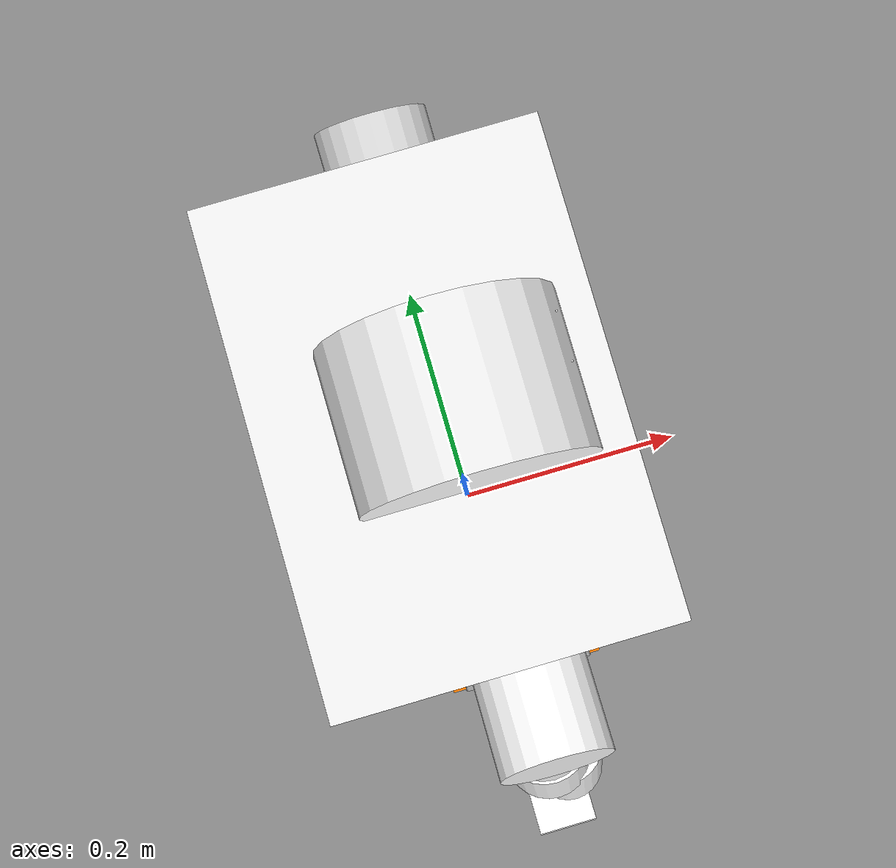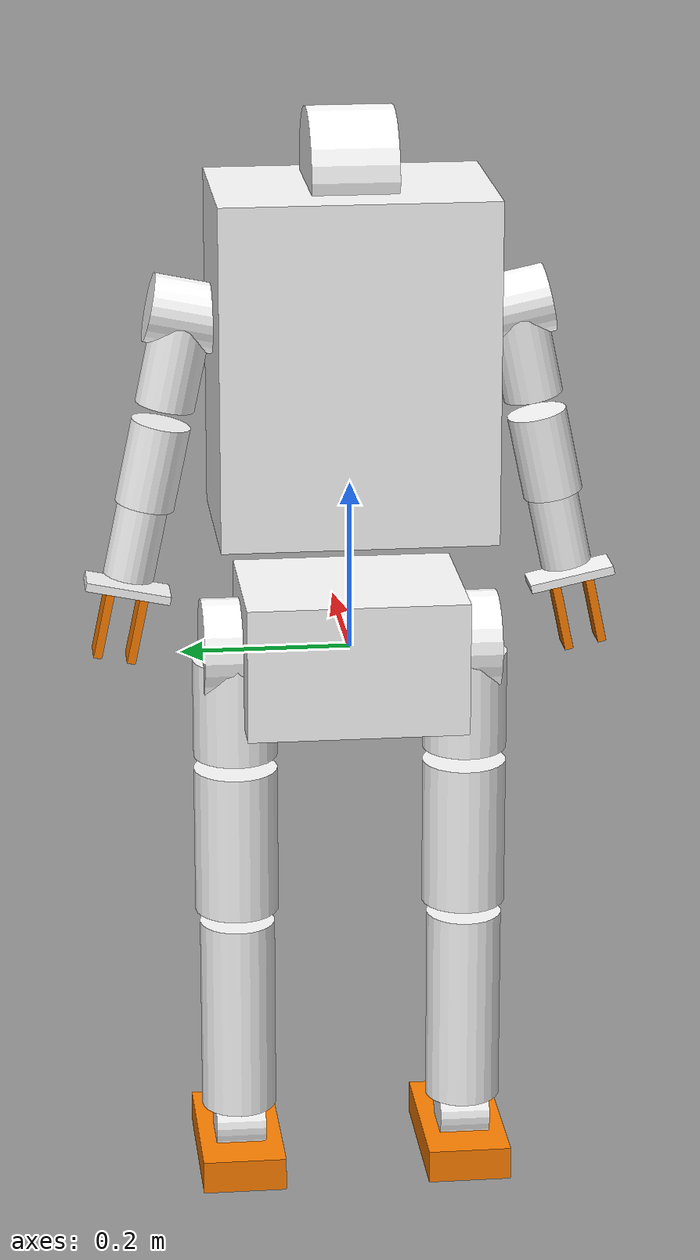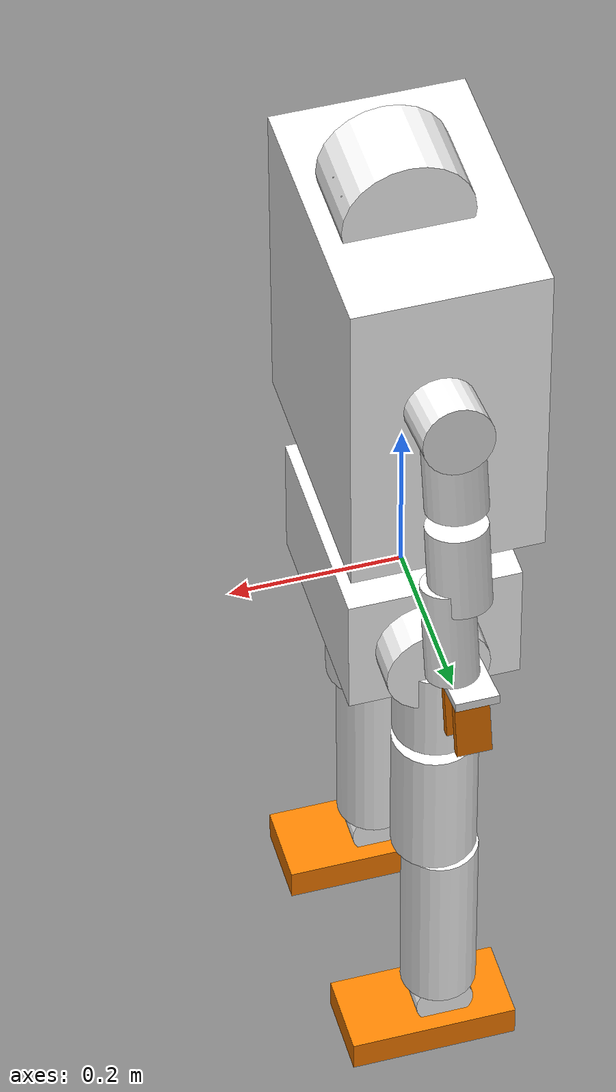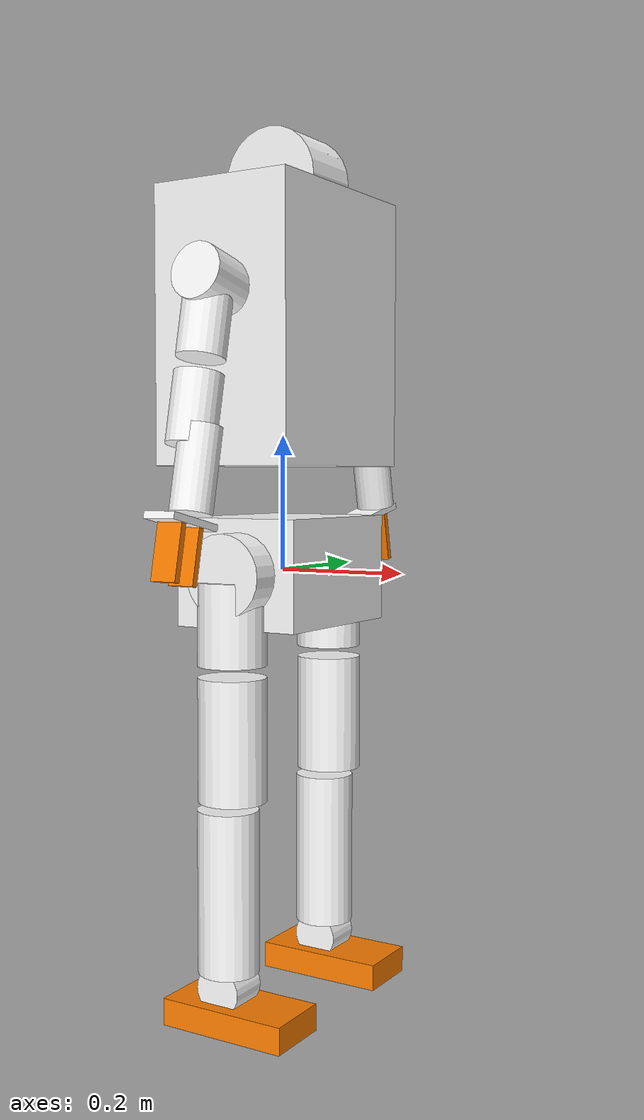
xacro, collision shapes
<?xml version="1.0"?>
<robot xmlns:xacro="http://www.ros.org/wiki/xacro" name="agibot_x2">
    <xacro:arg name="initial_positions_file" default="initial_positions.yaml" />

    <!-- Import agibot_x2 urdf file -->
    <xacro:include filename="$(find agibot_x2_pkg)/urdf/x2_hand_gazebo.urdf" />

    <!-- Import control_xacro -->
    <xacro:include filename="agibot_x2.ros2_control.xacro" />

    <xacro:agibot_x2_ros2_control name="FakeSystem" initial_positions_file="$(arg initial_positions_file)"/>

</robot>

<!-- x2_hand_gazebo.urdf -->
<robot name="agibot_x2" xmlns:xacro="http://www.ros.org/wiki/xacro">
  <xacro:include filename="$(find agibot_x2_pkg)/urdf/control_file.gazebo" />
  <xacro:arg name="finger_mu" default="1.0"/>

  <link name="world"/>

  <joint name="base_x_joint" type="prismatic">
    <parent link="world"/>
    <child link="base_x_link"/>
    <origin xyz="0 0 0" rpy="0 0 0"/>
    <axis xyz="1 0 0"/>
    <limit lower="-1.0" upper="5.0" effort="2000" velocity="2.0"/>
    <dynamics damping="500.0"/>
  </joint>
  <link name="base_x_link">
    <inertial>
      <mass value="0.5"/>
      <inertia ixx="0.001" ixy="0" ixz="0" iyy="0.001" iyz="0" izz="0.001"/>
    </inertial>
  </link>
  <joint name="base_y_joint" type="prismatic">
    <parent link="base_x_link"/>
    <child link="base_y_link"/>
    <origin xyz="0 0 0" rpy="0 0 0"/>
    <axis xyz="0 1 0"/>
    <limit lower="-3.0" upper="3.0" effort="2000" velocity="2.0"/>
    <dynamics damping="500.0"/>
  </joint>
  <link name="base_y_link">
    <inertial>
      <mass value="0.5"/>
      <inertia ixx="0.001" ixy="0" ixz="0" iyy="0.001" iyz="0" izz="0.001"/>
    </inertial>
  </link>
  <joint name="base_z_joint" type="prismatic">
    <parent link="base_y_link"/>
    <child link="base_z_link"/>
    <origin xyz="0 0 0" rpy="0 0 0"/>
    <axis xyz="0 0 1"/>
    <limit lower="-0.10" upper="0.50" effort="2000" velocity="1.0"/>
    <dynamics damping="500.0"/>
  </joint>
  <link name="base_z_link">
    <inertial>
      <mass value="0.5"/>
      <inertia ixx="0.001" ixy="0" ixz="0" iyy="0.001" iyz="0" izz="0.001"/>
    </inertial>
  </link>
  <joint name="base_yaw_joint" type="revolute">
    <parent link="base_z_link"/>
    <child link="pelvis"/>
    <origin xyz="0 0 0" rpy="0 0 0"/>
    <axis xyz="0 0 1"/>
    <limit lower="-3.15" upper="3.15" effort="2000" velocity="2.0"/>
    <dynamics damping="50.0"/>
  </joint>

  <link name="pelvis">
    <inertial>
      <origin xyz="-0.001209 -2.3e-05 -0.002011" rpy="0 0 0" />
      <mass value="3.523487" />
      <inertia ixx="0.0126" ixy="0.0" ixz="0.000163" iyy="0.007924" iyz="-5e-06" izz="0.012417" />
    </inertial>
    <visual>
      <origin xyz="0 0 0" rpy="0 0 0" />
      <geometry>
        <mesh filename="package://agibot_x2_pkg/meshes/pelvis.STL" />
      </geometry>
      <material name="white">
        <color rgba="1 1 1 1" />
      </material>
    </visual>
    <collision>
      <origin xyz="-0.0012 0 0.0" rpy="0 0 0" />
      <geometry>
        <box size="0.20 0.26 0.16" />
      </geometry>
    </collision>
  </link>

  <link name="imu_in_pelvis_link">
    <visual>
      <origin xyz="0 0 0" rpy="0 0 0" />
      <geometry>
        <mesh filename="package://agibot_x2_pkg/meshes/imu_in_pelvis_link.STL" />
      </geometry>
    </visual>
    <collision>
      <geometry>
        <box size="0.001 0.001 0.001"/>
      </geometry>
    </collision>
  </link>
  <joint name="imu_in_pelvis_joint" type="fixed">
    <origin xyz="0.0239464627920677 -0.00022868187247424 0.0417100000000296" rpy="0 0 0" />
    <parent link="pelvis" />
    <child link="imu_in_pelvis_link" />
    <axis xyz="0 0 0" />
  </joint>

  <link name="left_hip_pitch_link">
    <inertial>
      <origin xyz="0.00791 0.064136 0.000116" rpy="0 0 0" />
      <mass value="1.399682" />
      <inertia ixx="0.007995" ixy="0.000739" ixz="0.0" iyy="0.001639" iyz="1e-06" izz="0.007409" />
    </inertial>
    <visual>
      <origin xyz="0 0 0" rpy="0 0 0" />
      <geometry>
        <mesh filename="package://agibot_x2_pkg/meshes/left_hip_pitch_link.STL" />
      </geometry>
      <material name="white">
        <color rgba="1 1 1 1" />
      </material>
    </visual>
    <collision>
      <origin xyz="0.008 0.064 0" rpy="1.5708 0 0" />
      <geometry>
        <cylinder radius="0.06" length="0.08" />
      </geometry>
    </collision>
  </link>
  <joint name="left_hip_pitch_joint" type="revolute">
    <origin xyz="0 0.0713499997541465 0" rpy="0 0 0" />
    <parent link="pelvis" />
    <child link="left_hip_pitch_link" />
    <axis xyz="0 1 0" />
    <limit lower="-2.704" upper="2.556" effort="120" velocity="11.936" />
  </joint>

  <link name="left_hip_roll_link">
    <inertial>
      <origin xyz="4.7e-05 0.000231 -0.093505" rpy="0 0 0" />
      <mass value="1.584804" />
      <inertia ixx="0.017671" ixy="-4e-06" ixz="-6.6e-05" iyy="0.018102" iyz="-2.2e-05" izz="0.002515" />
    </inertial>
    <visual>
      <origin xyz="0 0 0" rpy="0 0 0" />
      <geometry>
        <mesh filename="package://agibot_x2_pkg/meshes/left_hip_roll_link.STL" />
      </geometry>
      <material name="white">
        <color rgba="1 1 1 1" />
      </material>
    </visual>
    <collision>
      <origin xyz="0 0 -0.07" rpy="0 0 0" />
      <geometry>
        <cylinder radius="0.05" length="0.12" />
      </geometry>
    </collision>
  </link>
  <joint name="left_hip_roll_joint" type="revolute">
    <origin xyz="-0.000574999999960968 0.0657000000000312 0" rpy="0 0 0" />
    <parent link="left_hip_pitch_link" />
    <child link="left_hip_roll_link" />
    <axis xyz="1 0 0" />
    <limit lower="-0.235" upper="2.906" effort="120" velocity="11.936" />
  </joint>

  <link name="left_hip_yaw_link">
    <inertial>
      <origin xyz="-0.002375 0.003914 -0.144276" rpy="0 0 0" />
      <mass value="2.010551" />
      <inertia ixx="0.051974" ixy="-7.1e-05" ixz="0.001419" iyy="0.052639" iyz="-0.001453" izz="0.002467" />
    </inertial>
    <visual>
      <origin xyz="0 0 0" rpy="0 0 0" />
      <geometry>
        <mesh filename="package://agibot_x2_pkg/meshes/left_hip_yaw_link.STL" />
      </geometry>
      <material name="white">
        <color rgba="1 1 1 1" />
      </material>
    </visual>
    <collision>
      <origin xyz="0 0 -0.10" rpy="0 0 0" />
      <geometry>
        <cylinder radius="0.05" length="0.18" />
      </geometry>
    </collision>
  </link>
  <joint name="left_hip_yaw_joint" type="revolute">
    <origin xyz="0.000574999999972778 0 -0.136850000000045" rpy="0 0 0" />
    <parent link="left_hip_roll_link" />
    <child link="left_hip_yaw_link" />
    <axis xyz="0 0 1" />
    <limit lower="-1.684" upper="3.43" effort="120" velocity="11.936" />
  </joint>

  <link name="left_knee_link">
    <inertial>
      <origin xyz="-0.002655 0.003681 -0.122697" rpy="0 0 0" />
      <mass value="1.568215" />
      <inertia ixx="0.030979" ixy="-4.5e-05" ixz="0.00017" iyy="0.030995" iyz="-0.000494" izz="0.001942" />
    </inertial>
    <visual>
      <origin xyz="0 0 0" rpy="0 0 0" />
      <geometry>
        <mesh filename="package://agibot_x2_pkg/meshes/left_knee_link.STL" />
      </geometry>
      <material name="white">
        <color rgba="1 1 1 1" />
      </material>
    </visual>
    <collision>
      <origin xyz="0 0 -0.14" rpy="0 0 0" />
      <geometry>
        <cylinder radius="0.045" length="0.24" />
      </geometry>
    </collision>
  </link>
  <joint name="left_knee_joint" type="revolute">
    <origin xyz="-0.00765999999995284 0.000225000000070329 -0.18309999999998" rpy="0 0 0" />
    <parent link="left_hip_yaw_link" />
    <child link="left_knee_link" />
    <axis xyz="0 1 0" />
    <limit lower="0" upper="2.4073" effort="120" velocity="11.936" />
  </joint>

  <link name="left_ankle_pitch_link">
    <inertial>
      <origin xyz="0.011691 -0.000181 0.003548" rpy="0 0 0" />
      <mass value="0.747802" />
      <inertia ixx="0.000985" ixy="8e-06" ixz="-1.1e-05" iyy="0.001162" iyz="-7.3e-05" izz="0.000722" />
    </inertial>
    <visual>
      <origin xyz="0 0 0" rpy="0 0 0" />
      <geometry>
        <mesh filename="package://agibot_x2_pkg/meshes/left_ankle_pitch_link.STL" />
      </geometry>
      <material name="white">
        <color rgba="1 1 1 1" />
      </material>
    </visual>
    <collision>
      <origin xyz="0.01 0 0" rpy="1.5708 0 0" />
      <geometry>
        <cylinder radius="0.035" length="0.06" />
      </geometry>
    </collision>
  </link>
  <joint name="left_ankle_pitch_joint" type="revolute">
    <origin xyz="-0.0100000000000136 -0.000124910735236235 -0.282000000000081" rpy="0 0 0" />
    <parent link="left_knee_link" />
    <child link="left_ankle_pitch_link" />
    <axis xyz="0 1 0" />
    <limit lower="-0.803" upper="0.453" effort="36" velocity="13.087" />
  </joint>

  <link name="left_ankle_roll_link">
    <inertial>
      <origin xyz="0.035428 2.5e-05 -0.049572" rpy="0 0 0" />
      <mass value="1.016166" />
      <inertia ixx="0.0037" ixy="2e-06" ixz="-0.001872" iyy="0.007937" iyz="-1e-06" izz="0.005766" />
    </inertial>
    <visual>
      <origin xyz="0 0 0" rpy="0 0 0" />
      <geometry>
        <mesh filename="package://agibot_x2_pkg/meshes/left_ankle_roll_link.STL" />
      </geometry>
      <material name="yellow">
        <color rgba="1.0 0.5 0.0 1" />
      </material>
    </visual>
    <collision>
      <origin xyz="0.03 0 -0.04" rpy="0 0 0" />
      <geometry>
        <box size="0.20 0.10 0.04" />
      </geometry>
    </collision>
  </link>
  <joint name="left_ankle_roll_joint" type="revolute">
    <origin xyz="-0.00174999998947351 0 0" rpy="0 0 0" />
    <parent link="left_ankle_pitch_link" />
    <child link="left_ankle_roll_link" />
    <axis xyz="1 0 0" />
    <limit lower="-0.262" upper="0.262" effort="24" velocity="15.077" />
  </joint>

  <link name="right_hip_pitch_link">
    <inertial>
      <origin xyz="0.007909 -0.064114 0.000131" rpy="0 0 0" />
      <mass value="1.400227" />
      <inertia ixx="0.007996" ixy="-0.00074" ixz="0.0" iyy="0.00164" iyz="-1e-06" izz="0.007409" />
    </inertial>
    <visual>
      <origin xyz="0 0 0" rpy="0 0 0" />
      <geometry>
        <mesh filename="package://agibot_x2_pkg/meshes/right_hip_pitch_link.STL" />
      </geometry>
      <material name="white">
        <color rgba="1 1 1 1" />
      </material>
    </visual>
    <collision>
      <origin xyz="0.008 -0.064 0" rpy="1.5708 0 0" />
      <geometry>
        <cylinder radius="0.06" length="0.08" />
      </geometry>
    </collision>
  </link>
  <joint name="right_hip_pitch_joint" type="revolute">
    <origin xyz="0 -0.0713499997541464 0" rpy="0 0 0" />
    <parent link="pelvis" />
    <child link="right_hip_pitch_link" />
    <axis xyz="0 1 0" />
    <limit lower="-2.704" upper="2.556" effort="120" velocity="11.936" />
  </joint>

  <link name="right_hip_roll_link">
    <inertial>
      <origin xyz="-0.000586 -0.000228 -0.093568" rpy="0 0 0" />
      <mass value="1.585084" />
      <inertia ixx="0.017694" ixy="4e-06" ixz="2.2e-05" iyy="0.018116" iyz="2.2e-05" izz="0.002516" />
    </inertial>
    <visual>
      <origin xyz="0 0 0" rpy="0 0 0" />
      <geometry>
        <mesh filename="package://agibot_x2_pkg/meshes/right_hip_roll_link.STL" />
      </geometry>
      <material name="white">
        <color rgba="1 1 1 1" />
      </material>
    </visual>
    <collision>
      <origin xyz="0 0 -0.07" rpy="0 0 0" />
      <geometry>
        <cylinder radius="0.05" length="0.12" />
      </geometry>
    </collision>
  </link>
  <joint name="right_hip_roll_joint" type="revolute">
    <origin xyz="0 -0.0657000004916197 0" rpy="0 0 0" />
    <parent link="right_hip_pitch_link" />
    <child link="right_hip_roll_link" />
    <axis xyz="1 0 0" />
    <limit lower="-2.906" upper="0.235" effort="120" velocity="11.936" />
  </joint>

  <link name="right_hip_yaw_link">
    <inertial>
      <origin xyz="-0.002444 -0.003935 -0.144335" rpy="0 0 0" />
      <mass value="2.002622" />
      <inertia ixx="0.051833" ixy="7.1e-05" ixz="0.001432" iyy="0.052497" iyz="0.001457" izz="0.002461" />
    </inertial>
    <visual>
      <origin xyz="0 0 0" rpy="0 0 0" />
      <geometry>
        <mesh filename="package://agibot_x2_pkg/meshes/right_hip_yaw_link.STL" />
      </geometry>
      <material name="white">
        <color rgba="1 1 1 1" />
      </material>
    </visual>
    <collision>
      <origin xyz="0 0 -0.10" rpy="0 0 0" />
      <geometry>
        <cylinder radius="0.05" length="0.18" />
      </geometry>
    </collision>
  </link>
  <joint name="right_hip_yaw_joint" type="revolute">
    <origin xyz="0 0 -0.136850000000023" rpy="0 0 0" />
    <parent link="right_hip_roll_link" />
    <child link="right_hip_yaw_link" />
    <axis xyz="0 0 1" />
    <limit lower="-3.43" upper="1.684" effort="120" velocity="11.936" />
  </joint>

  <link name="right_knee_link">
    <inertial>
      <origin xyz="-0.002699 -0.003794 -0.122288" rpy="0 0 0" />
      <mass value="1.565881" />
      <inertia ixx="0.03081" ixy="4.5e-05" ixz="0.000184" iyy="0.030822" iyz="0.000508" izz="0.001935" />
    </inertial>
    <visual>
      <origin xyz="0 0 0" rpy="0 0 0" />
      <geometry>
        <mesh filename="package://agibot_x2_pkg/meshes/right_knee_link.STL" />
      </geometry>
      <material name="white">
        <color rgba="1 1 1 1" />
      </material>
    </visual>
    <collision>
      <origin xyz="0 0 -0.14" rpy="0 0 0" />
      <geometry>
        <cylinder radius="0.045" length="0.24" />
      </geometry>
    </collision>
  </link>
  <joint name="right_knee_joint" type="revolute">
    <origin xyz="-0.00766000000003646 -0.000225000000000253 -0.183100000000014" rpy="0 0 0" />
    <parent link="right_hip_yaw_link" />
    <child link="right_knee_link" />
    <axis xyz="0 1 0" />
    <limit lower="0" upper="2.4073" effort="120" velocity="11.936" />
  </joint>

  <link name="right_ankle_pitch_link">
    <inertial>
      <origin xyz="0.011665 0.000937 0.00394" rpy="0 0 0" />
      <mass value="0.749566" />
      <inertia ixx="0.001037" ixy="9e-06" ixz="-1.1e-05" iyy="0.001214" iyz="6.9e-05" izz="0.000723" />
    </inertial>
    <visual>
      <origin xyz="0 0 0" rpy="0 0 0" />
      <geometry>
        <mesh filename="package://agibot_x2_pkg/meshes/right_ankle_pitch_link.STL" />
      </geometry>
      <material name="white">
        <color rgba="1 1 1 1" />
      </material>
    </visual>
    <collision>
      <origin xyz="0.01 0 0" rpy="1.5708 0 0" />
      <geometry>
        <cylinder radius="0.035" length="0.06" />
      </geometry>
    </collision>
  </link>
  <joint name="right_ankle_pitch_joint" type="revolute">
    <origin xyz="-0.00999999999984942 0.000124910735223305 -0.282000000000021" rpy="0 0 0" />
    <parent link="right_knee_link" />
    <child link="right_ankle_pitch_link" />
    <axis xyz="0 1 0" />
    <limit lower="-0.803" upper="0.453" effort="36" velocity="13.088" />
  </joint>

  <link name="right_ankle_roll_link">
    <inertial>
      <origin xyz="0.035428 2.5e-05 -0.049572" rpy="0 0 0" />
      <mass value="1.016166" />
      <inertia ixx="0.0037" ixy="2e-06" ixz="-0.001872" iyy="0.007937" iyz="-1e-06" izz="0.005766" />
    </inertial>
    <visual>
      <origin xyz="0 0 0" rpy="0 0 0" />
      <geometry>
        <mesh filename="package://agibot_x2_pkg/meshes/right_ankle_roll_link.STL" />
      </geometry>
      <material name="yellow">
        <color rgba="1.0 0.5 0.0 1" />
      </material>
    </visual>
    <collision>
      <origin xyz="0.03 0 -0.04" rpy="0 0 0" />
      <geometry>
        <box size="0.20 0.10 0.04" />
      </geometry>
    </collision>
  </link>
  <joint name="right_ankle_roll_joint" type="revolute">
    <origin xyz="-0.00174999998537372 0 0" rpy="0 0 0" />
    <parent link="right_ankle_pitch_link" />
    <child link="right_ankle_roll_link" />
    <axis xyz="1 0 0" />
    <limit lower="-0.2625" upper="0.2625" effort="24" velocity="15.077" />
  </joint>

  <link name="waist_yaw_link">
    <inertial>
      <origin xyz="-0.001359 4.7e-05 0.041703" rpy="0 0 0" />
      <mass value="1.668542" />
      <inertia ixx="0.005012" ixy="1e-06" ixz="-0.000209" iyy="0.005" iyz="1e-06" izz="0.002852" />
    </inertial>
    <visual>
      <origin xyz="0 0 0" rpy="0 0 0" />
      <geometry>
        <mesh filename="package://agibot_x2_pkg/meshes/waist_yaw_link.STL" />
      </geometry>
      <material name="white">
        <color rgba="1 1 1 1" />
      </material>
    </visual>
    <collision>
      <geometry>
        <box size="0.001 0.001 0.001"/>
      </geometry>
    </collision>
  </link>
  <joint name="waist_yaw_joint" type="revolute">
    <origin xyz="0 0 0.0670600000000297" rpy="0 0 0" />
    <parent link="pelvis" />
    <child link="waist_yaw_link" />
    <axis xyz="0 0 1" />
    <limit lower="-3.43" upper="2.382" effort="120" velocity="11.936" />
  </joint>

  <link name="waist_pitch_link">
    <inertial>
      <origin xyz="0.008967 -1e-06 0.0" rpy="0 0 0" />
      <mass value="0.392413" />
      <inertia ixx="0.000133" ixy="0.0" ixz="0.0" iyy="0.000133" iyz="0.0" izz="0.00023" />
    </inertial>
    <visual>
      <origin xyz="0 0 0" rpy="0 0 0" />
      <geometry>
        <mesh filename="package://agibot_x2_pkg/meshes/waist_pitch_link.STL" />
      </geometry>
      <material name="white">
        <color rgba="1 1 1 1" />
      </material>
    </visual>
    <collision>
      <geometry>
        <box size="0.001 0.001 0.001"/>
      </geometry>
    </collision>
  </link>
  <joint name="waist_pitch_joint" type="revolute">
    <origin xyz="0 0 0.0880106468356499" rpy="0 0 0" />
    <parent link="waist_yaw_link" />
    <child link="waist_pitch_link" />
    <axis xyz="0 1 0" />
    <limit lower="-0.314" upper="0.314" effort="48" velocity="13.088" />
  </joint>

  <link name="torso_link">
    <inertial>
      <origin xyz="-0.00574 0.000528 0.196696" rpy="0 0 0" />
      <mass value="9.464653" />
      <inertia ixx="0.472108" ixy="0.00022" ixz="-0.01945" iyy="0.45047" iyz="0.000757" izz="0.066357" />
    </inertial>
    <visual>
      <origin xyz="0 0 0" rpy="0 0 0" />
      <geometry>
        <mesh filename="package://agibot_x2_pkg/meshes/torso_plus_link.STL" />
      </geometry>
      <material name="white">
        <color rgba="1 1 1 1" />
      </material>
    </visual>
    <collision>
      <origin xyz="-0.0057 0.0 0.20" rpy="0 0 0" />
      <geometry>
        <box size="0.22 0.32 0.40" />
      </geometry>
    </collision>
  </link>
  <joint name="waist_roll_joint" type="revolute">
    <origin xyz="0 0 0" rpy="0 0 0" />
    <parent link="waist_pitch_link" />
    <child link="torso_link" />
    <axis xyz="1 0 0" />
    <limit lower="-0.488" upper="0.488" effort="48" velocity="13.088" />
  </joint>

  <link name="imu_in_torso_link">
    <visual>
      <origin xyz="0 0 0" rpy="0 0 0" />
      <geometry>
        <mesh filename="package://agibot_x2_pkg/meshes/imu_in_torso_link.STL" />
      </geometry>
      <material name="white">
        <color rgba="1 1 1 1" />
      </material>
    </visual>
    <collision>
      <geometry>
        <box size="0.001 0.001 0.001"/>
      </geometry>
    </collision>
  </link>
  <joint name="imu_in_torso_joint" type="fixed">
    <origin xyz="-0.0248787003951661 0.0019852778697029 0.105938055641669" rpy="0 0 0" />
    <parent link="torso_link" />
    <child link="imu_in_torso_link" />
    <axis xyz="0 0 0" />
  </joint>

  <link name="left_shoulder_pitch_link">
    <inertial>
      <origin xyz="0.003007 0.050014 6.2e-05" rpy="0 0 0" />
      <mass value="0.885896" />
      <inertia ixx="0.003023" ixy="0.000137" ixz="-2e-06" iyy="0.000685" iyz="1e-06" izz="0.002929" />
    </inertial>
    <visual>
      <origin xyz="0 0 0" rpy="0 0 0" />
      <geometry>
        <mesh filename="package://agibot_x2_pkg/meshes/left_shoulder_pitch_link.STL" />
      </geometry>
      <material name="white">
        <color rgba="1 1 1 1" />
      </material>
    </visual>
    <collision>
      <origin xyz="0.003 0.05 0" rpy="1.5708 0 0" />
      <geometry>
        <cylinder radius="0.04" length="0.08" />
      </geometry>
    </collision>
  </link>
  <joint name="left_shoulder_pitch_joint" type="revolute">
    <origin xyz="0.00329906676354264 0.143031506663431 0.241647721005027" rpy="0.209439453777995 0 0" />
    <parent link="torso_link" />
    <child link="left_shoulder_pitch_link" />
    <axis xyz="0 1 0" />
    <limit lower="-3.08" upper="2.04" effort="36" velocity="13.088" />
  </joint>

  <link name="left_shoulder_roll_link">
    <inertial>
      <origin xyz="0.000621 -0.000183 -0.078842" rpy="0 0 0" />
      <mass value="0.706556" />
      <inertia ixx="0.0054" ixy="0.0" ixz="-6.7e-05" iyy="0.005499" iyz="1.4e-05" izz="0.00054" />
    </inertial>
    <visual>
      <origin xyz="0 0 0" rpy="0 0 0" />
      <geometry>
        <mesh filename="package://agibot_x2_pkg/meshes/left_shoulder_roll_link.STL" />
      </geometry>
      <material name="white">
        <color rgba="1 1 1 1" />
      </material>
    </visual>
    <collision>
      <origin xyz="0 0 -0.06" rpy="0 0 0" />
      <geometry>
        <cylinder radius="0.035" length="0.10" />
      </geometry>
    </collision>
  </link>
  <joint name="left_shoulder_roll_joint" type="revolute">
    <origin xyz="-0.00049991072907324 0.0495 0" rpy="0 0 0" />
    <parent link="left_shoulder_pitch_link" />
    <child link="left_shoulder_roll_link" />
    <axis xyz="1 0 0" />
    <limit lower="-0.061" upper="2.993" effort="36" velocity="13.088" />
  </joint>

  <link name="left_shoulder_yaw_link">
    <inertial>
      <origin xyz="0.010005 0.000179 -0.069477" rpy="0 0 0" />
      <mass value="0.704662" />
      <inertia ixx="0.004291" ixy="0.0" ixz="-0.000607" iyy="0.004367" iyz="-8e-06" izz="0.000543" />
    </inertial>
    <visual>
      <origin xyz="0 0 0" rpy="0 0 0" />
      <geometry>
        <mesh filename="package://agibot_x2_pkg/meshes/left_shoulder_yaw_link.STL" />
      </geometry>
      <material name="white">
        <color rgba="1 1 1 1" />
      </material>
    </visual>
    <collision>
      <origin xyz="0 0 -0.06" rpy="0 0 0" />
      <geometry>
        <cylinder radius="0.035" length="0.10" />
      </geometry>
    </collision>
  </link>
  <joint name="left_shoulder_yaw_joint" type="revolute">
    <origin xyz="0.00122423638490546 0 -0.121194848262102" rpy="0 -0.00597565694965793 0" />
    <parent link="left_shoulder_roll_link" />
    <child link="left_shoulder_yaw_link" />
    <axis xyz="0 0 1" />
    <limit lower="-2.556" upper="2.556" effort="24" velocity="15.077" />
  </joint>

  <link name="left_elbow_link">
    <inertial>
      <origin xyz="-0.013174 0.003788 -0.080203" rpy="0 0 0" />
      <mass value="0.688008" />
      <inertia ixx="0.00527" ixy="-1.9e-05" ixz="0.000743" iyy="0.005332" iyz="-9.4e-05" izz="0.000563" />
    </inertial>
    <visual>
      <origin xyz="0 0 0" rpy="0 0 0" />
      <geometry>
        <mesh filename="package://agibot_x2_pkg/meshes/left_elbow_link.STL" />
      </geometry>
      <material name="white">
        <color rgba="1 1 1 1" />
      </material>
    </visual>
    <collision>
      <origin xyz="0 0 -0.06" rpy="0 0 0" />
      <geometry>
        <cylinder radius="0.03" length="0.12" />
      </geometry>
    </collision>
  </link>
  <joint name="left_elbow_joint" type="revolute">
    <origin xyz="0.0140000000488655 0.000199986464082369 -0.0829500000002385" rpy="0 0.00597565694965793 0" />
    <parent link="left_shoulder_yaw_link" />
    <child link="left_elbow_link" />
    <axis xyz="0 1 0" />
    <limit lower="-2.3556" upper="0" effort="24" velocity="15.077" />
  </joint>

  <link name="left_wrist_yaw_link">
    <inertial>
      <origin xyz="0.003072 -0.000934 -0.117784" rpy="0 0 0" />
      <mass value="0.525614" />
      <inertia ixx="0.009959" ixy="-3e-05" ixz="-0.000278" iyy="0.010026" iyz="8.7e-05" izz="0.0004" />
    </inertial>
  </link>
  <joint name="left_wrist_yaw_joint" type="revolute">
    <origin xyz="-0.01328 -9.7549E-05 -0.12058" rpy="0 0 0" />
    <parent link="left_elbow_link" />
    <child link="left_wrist_yaw_link" />
    <axis xyz="0 0 -1" />
    <limit lower="-2.556" upper="2.556" effort="24" velocity="15.077" />
  </joint>

  <!-- NUOVO GRIPPER SINISTRO -->
  <joint name="left_gripper_mount_joint" type="fixed">
    <parent link="left_wrist_yaw_link"/>
    <child link="left_gripper_base_link"/>
    <origin xyz="0.0 0 -0.01" rpy="0.0 0 0"/>
  </joint>

  <link name="left_gripper_base_link">
    <inertial>
      <mass value="0.1"/>
      <origin xyz="0.0 0.0 0.0" rpy="0.0 0.0 0.0"/>
      <inertia ixx="0.00009" ixy="0.0" ixz="0.0" iyy="0.00009" iyz="0.0" izz="0.00002"/>
    </inertial>
    <collision>
      <geometry>
        <box size=".05 .1 .01"/>
      </geometry>
      <origin xyz="0.0 0.0 0.0" rpy="0.0 0.0 0.0"/>
    </collision>
    <visual>
      <geometry>
        <box size=".05 .1 .01"/>
      </geometry>
      <material name="white">
        <color rgba="1 1 1 1"/>
      </material>
      <origin xyz="0.0 0.0 0.0" rpy="0.0 0.0 0.0"/>
    </visual>
  </link>

  <joint name="left_gripper_left_finger_joint" type="prismatic">
    <limit lower="0" upper="0.04" effort="100.0" velocity="4.0"/>
    <parent link="left_gripper_base_link"/>
    <child link="left_gripper_left_finger_link"/>
    <axis xyz="0 1 0"/>
    <origin xyz="0.0 0.02 -0.045" />
  </joint>

  <link name="left_gripper_left_finger_link">
    <inertial>
      <mass value="0.1"/>
      <origin xyz="0.0 0.0 0.0" rpy="0.0 0.0 0.0"/>
      <inertia ixx="0.00009" ixy="0.0" ixz="0.0" iyy="0.00009" iyz="0.0" izz="0.00002"/>
    </inertial>
    <collision>
      <geometry>
        <box size=".04 .01 .08"/>
      </geometry>
      <origin xyz="0.0 0.0 0.0" rpy="0.0 0.0 0.0"/>
    </collision>
    <visual>
      <geometry>
        <box size=".04 .01 .08"/>
      </geometry>
      <material name="yellow">
        <color rgba="1.0 0.5 0.0 1"/>
      </material>
      <origin xyz="0.0 0.0 0.0" rpy="0.0 0.0 0.0"/>
    </visual>
  </link>

  <gazebo reference="left_gripper_left_finger_link">
    <kp>1000000.0</kp>
    <kd>100.0</kd>
    <mu1>$(arg finger_mu)</mu1>
    <mu2>$(arg finger_mu)</mu2>
    <fdir1>1 0 0</fdir1>
    <maxVel>1.0</maxVel>
    <minDepth>0.002</minDepth>
  </gazebo>

  <joint name="left_gripper_right_finger_joint" type="prismatic">
    <limit lower="0" upper="0.04" effort="100.0" velocity="4.0"/>
    <parent link="left_gripper_base_link"/>
    <child link="left_gripper_right_finger_link"/>
    <axis xyz="0 -1 0"/>
    <origin xyz="0.0 -0.02 -0.045" />
  </joint>

  <link name="left_gripper_right_finger_link">
    <inertial>
      <mass value="0.1"/>
      <origin xyz="0.0 0.0 0.0" rpy="0.0 0.0 0.0"/>
      <inertia ixx="0.00009" ixy="0.0" ixz="0.0" iyy="0.00009" iyz="0.0" izz="0.00002"/>
    </inertial>
    <collision>
      <geometry>
        <box size=".04 .01 .08"/>
      </geometry>
      <origin xyz="0.0 0.0 0.0" rpy="0.0 0.0 0.0"/>
    </collision>
    <visual>
      <geometry>
        <box size=".04 .01 .08"/>
      </geometry>
      <material name="yellow">
        <color rgba="1.0 0.5 0.0 1"/>
      </material>
      <origin xyz="0.0 0.0 0.0" rpy="0.0 0.0 0.0"/>
    </visual>
  </link>

  <gazebo reference="left_gripper_right_finger_link">
    <kp>1000000.0</kp>
    <kd>100.0</kd>
    <mu1>$(arg finger_mu)</mu1>
    <mu2>$(arg finger_mu)</mu2>
    <fdir1>1 0 0</fdir1>
    <maxVel>1.0</maxVel>
    <minDepth>0.002</minDepth>
  </gazebo>

  <link name="left_gripper_camera_link">
    <inertial>
      <origin xyz="0 0 0" rpy="0 0 0"/>
      <mass value="0.001"/>
      <inertia ixx="1e-6" ixy="0" ixz="0" iyy="1e-6" iyz="0" izz="1e-6"/>
    </inertial>
    <visual>
      <origin xyz="0 0 0" rpy="0 0 0"/>
      <geometry>
        <box size="0.008 0.008 0.008"/>
      </geometry>
      <material name="red">
        <color rgba="1 0 0 1"/>
      </material>
    </visual>
  </link>
  <joint name="left_gripper_camera_joint" type="fixed">
    <origin xyz="0 0 -0.005" rpy="0 1.5707963 0"/>
    <parent link="left_gripper_base_link"/>
    <child link="left_gripper_camera_link"/>
  </joint>

  <link name="right_shoulder_pitch_link">
    <inertial>
      <origin xyz="0.002721 -0.050304 3.4e-05" rpy="0 0 0" />
      <mass value="0.885544" />
      <inertia ixx="0.003031" ixy="-0.000123" ixz="-1e-06" iyy="0.000681" iyz="0.0" izz="0.002949" />
    </inertial>
    <visual>
      <origin xyz="0 0 0" rpy="0 0 0" />
      <geometry>
        <mesh filename="package://agibot_x2_pkg/meshes/right_shoulder_pitch_link.STL" />
      </geometry>
      <material name="white">
        <color rgba="1 1 1 1" />
      </material>
    </visual>
    <collision>
      <origin xyz="0.003 -0.05 0" rpy="1.5708 0 0" />
      <geometry>
        <cylinder radius="0.04" length="0.08" />
      </geometry>
    </collision>
  </link>
  <joint name="right_shoulder_pitch_joint" type="revolute">
    <origin xyz="0.00330093831251838 -0.143030971450747 0.241648201390685" rpy="-0.209442812383636 0 0" />
    <parent link="torso_link" />
    <child link="right_shoulder_pitch_link" />
    <axis xyz="0 1 0" />
    <limit lower="-3.08" upper="2.04" effort="36" velocity="13.088" />
  </joint>

  <link name="right_shoulder_roll_link">
    <inertial>
      <origin xyz="0.000598 0.000185 -0.079928" rpy="0 0 0" />
      <mass value="0.696963" />
      <inertia ixx="0.0054" ixy="0.0" ixz="-3.8e-05" iyy="0.005489" iyz="-1.4e-05" izz="0.00053" />
    </inertial>
    <visual>
      <origin xyz="0 0 0" rpy="0 0 0" />
      <geometry>
        <mesh filename="package://agibot_x2_pkg/meshes/right_shoulder_roll_link.STL" />
      </geometry>
      <material name="white">
        <color rgba="1 1 1 1" />
      </material>
    </visual>
    <collision>
      <origin xyz="0 0 -0.06" rpy="0 0 0" />
      <geometry>
        <cylinder radius="0.035" length="0.10" />
      </geometry>
    </collision>
  </link>
  <joint name="right_shoulder_roll_joint" type="revolute">
    <origin xyz="-0.000499999994070091 -0.0495000000000002 0" rpy="0 0.000154003092926045 0" />
    <parent link="right_shoulder_pitch_link" />
    <child link="right_shoulder_roll_link" />
    <axis xyz="1 0 0" />
    <limit lower="-2.993" upper="0.061" effort="36" velocity="13.088" />
  </joint>

  <link name="right_shoulder_yaw_link">
    <inertial>
      <origin xyz="0.010082 -0.000178 -0.069484" rpy="0 0 0" />
      <mass value="0.704661" />
      <inertia ixx="0.004292" ixy="0.0" ixz="-0.000609" iyy="0.004366" iyz="8e-06" izz="0.000542" />
    </inertial>
    <visual>
      <origin xyz="0 0 0" rpy="0 0 0" />
      <geometry>
        <mesh filename="package://agibot_x2_pkg/meshes/right_shoulder_yaw_link.STL" />
      </geometry>
      <material name="white">
        <color rgba="1 1 1 1" />
      </material>
    </visual>
    <collision>
      <origin xyz="0 0 -0.06" rpy="0 0 0" />
      <geometry>
        <cylinder radius="0.035" length="0.10" />
      </geometry>
    </collision>
  </link>
  <joint name="right_shoulder_yaw_joint" type="revolute">
    <origin xyz="0.000499999999999765 0 -0.121199999999934" rpy="0 0 0" />
    <parent link="right_shoulder_roll_link" />
    <child link="right_shoulder_yaw_link" />
    <axis xyz="0 0 1" />
    <limit lower="-2.556" upper="2.556" effort="24" velocity="15.077" />
  </joint>

  <link name="right_elbow_link">
    <inertial>
      <origin xyz="-0.013517 -0.003463 -0.080438" rpy="0 0 0" />
      <mass value="0.687932" />
      <inertia ixx="0.005285" ixy="1.7e-05" ixz="0.000767" iyy="0.005356" iyz="8e-05" izz="0.000567" />
    </inertial>
    <visual>
      <origin xyz="0 0 0" rpy="0 0 0" />
      <geometry>
        <mesh filename="package://agibot_x2_pkg/meshes/right_elbow_link.STL" />
      </geometry>
      <material name="white">
        <color rgba="1 1 1 1" />
      </material>
    </visual>
    <collision>
      <origin xyz="0 0 -0.06" rpy="0 0 0" />
      <geometry>
        <cylinder radius="0.03" length="0.12" />
      </geometry>
    </collision>
  </link>
  <joint name="right_elbow_joint" type="revolute">
    <origin xyz="0.0139999999999662 -0.0002000000000143 -0.0829500000000745" rpy="0 0 0" />
    <parent link="right_shoulder_yaw_link" />
    <child link="right_elbow_link" />
    <axis xyz="0 1 0" />
    <limit lower="-2.3556" upper="0" effort="24" velocity="15.077" />
  </joint>

  <link name="right_wrist_yaw_link">
    <inertial>
      <origin xyz="0.002428 0.000868 -0.116517" rpy="0 0 0" />
      <mass value="0.525681" />
      <inertia ixx="0.009938" ixy="2.9e-05" ixz="-0.000223" iyy="0.010004" iyz="-8.7e-05" izz="0.000397" />
    </inertial>
  </link>
  <joint name="right_wrist_yaw_joint" type="revolute">
    <origin xyz="-0.0140000017961392 9.7526096753231E-05 -0.120694276209686" rpy="0 0 3.27341906322599E-05" />
    <parent link="right_elbow_link" />
    <child link="right_wrist_yaw_link" />
    <axis xyz="0 0 1" />
    <limit lower="-2.556" upper="2.556" effort="24" velocity="15.077" />
  </joint>

  <!-- NUOVO GRIPPER DESTRO -->
  <joint name="right_gripper_mount_joint" type="fixed">
    <parent link="right_wrist_yaw_link"/>
    <child link="right_gripper_base_link"/>
    <origin xyz="0.0 0 -0.01" rpy="0.0 0 0"/>
  </joint>

  <link name="right_gripper_base_link">
    <inertial>
      <mass value="0.1"/>
      <origin xyz="0.0 0.0 0.0" rpy="0.0 0.0 0.0"/>
      <inertia ixx="0.00009" ixy="0.0" ixz="0.0" iyy="0.00009" iyz="0.0" izz="0.00002"/>
    </inertial>
    <collision>
      <geometry>
        <box size=".05 .1 .01"/>
      </geometry>
      <origin xyz="0.0 0.0 0.0" rpy="0.0 0.0 0.0"/>
    </collision>
    <visual>
      <geometry>
        <box size=".05 .1 .01"/>
      </geometry>
      <material name="white">
        <color rgba="1 1 1 1"/>
      </material>
      <origin xyz="0.0 0.0 0.0" rpy="0.0 0.0 0.0"/>
    </visual>
  </link>

  <joint name="right_gripper_left_finger_joint" type="prismatic">
    <limit lower="0" upper="0.04" effort="100.0" velocity="4.0"/>
    <parent link="right_gripper_base_link"/>
    <child link="right_gripper_left_finger_link"/>
    <axis xyz="0 1 0"/>
    <origin xyz="0.0 0.02 -0.045" />
  </joint>

  <link name="right_gripper_left_finger_link">
    <inertial>
      <mass value="0.1"/>
      <origin xyz="0.0 0.0 0.0" rpy="0.0 0.0 0.0"/>
      <inertia ixx="0.00009" ixy="0.0" ixz="0.0" iyy="0.00009" iyz="0.0" izz="0.00002"/>
    </inertial>
    <collision>
      <geometry>
        <box size=".04 .01 .08"/>
      </geometry>
      <origin xyz="0.0 0.0 0.0" rpy="0.0 0.0 0.0"/>
    </collision>
    <visual>
      <geometry>
        <box size=".04 .01 .08"/>
      </geometry>
      <material name="yellow">
        <color rgba="1.0 0.5 0.0 1"/>
      </material>
      <origin xyz="0.0 0.0 0.0" rpy="0.0 0.0 0.0"/>
    </visual>
  </link>

  <gazebo reference="right_gripper_left_finger_link">
    <kp>1000000.0</kp>
    <kd>100.0</kd>
    <mu1>$(arg finger_mu)</mu1>
    <mu2>$(arg finger_mu)</mu2>
    <fdir1>1 0 0</fdir1>
    <maxVel>1.0</maxVel>
    <minDepth>0.002</minDepth>
  </gazebo>

  <joint name="right_gripper_right_finger_joint" type="prismatic">
    <limit lower="0" upper="0.04" effort="100.0" velocity="4.0"/>
    <parent link="right_gripper_base_link"/>
    <child link="right_gripper_right_finger_link"/>
    <axis xyz="0 -1 0"/>
    <origin xyz="0.0 -0.02 -0.045" />
  </joint>

  <link name="right_gripper_right_finger_link">
    <inertial>
      <mass value="0.1"/>
      <origin xyz="0.0 0.0 0.0" rpy="0.0 0.0 0.0"/>
      <inertia ixx="0.00009" ixy="0.0" ixz="0.0" iyy="0.00009" iyz="0.0" izz="0.00002"/>
    </inertial>
    <collision>
      <geometry>
        <box size=".04 .01 .08"/>
      </geometry>
      <origin xyz="0.0 0.0 0.0" rpy="0.0 0.0 0.0"/>
    </collision>
    <visual>
      <geometry>
        <box size=".04 .01 .08"/>
      </geometry>
      <material name="yellow">
        <color rgba="1.0 0.5 0.0 1"/>
      </material>
      <origin xyz="0.0 0.0 0.0" rpy="0.0 0.0 0.0"/>
    </visual>
  </link>

  <gazebo reference="right_gripper_right_finger_link">
    <kp>1000000.0</kp>
    <kd>100.0</kd>
    <mu1>$(arg finger_mu)</mu1>
    <mu2>$(arg finger_mu)</mu2>
    <fdir1>1 0 0</fdir1>
    <maxVel>1.0</maxVel>
    <minDepth>0.002</minDepth>
  </gazebo>

  <link name="right_gripper_camera_link">
    <inertial>
      <origin xyz="0 0 0" rpy="0 0 0"/>
      <mass value="0.001"/>
      <inertia ixx="1e-6" ixy="0" ixz="0" iyy="1e-6" iyz="0" izz="1e-6"/>
    </inertial>
    <visual>
      <origin xyz="0 0 0" rpy="0 0 0"/>
      <geometry>
        <box size="0.008 0.008 0.008"/>
      </geometry>
      <material name="red">
        <color rgba="1 0 0 1"/>
      </material>
    </visual>
    <collision>
      <geometry>
        <box size="0.001 0.001 0.001"/>
      </geometry>
    </collision>
  </link>
  <joint name="right_gripper_camera_joint" type="fixed">
    <origin xyz="0 0 -0.005" rpy="0 1.5707963 0"/>
    <parent link="right_gripper_base_link"/>
    <child link="right_gripper_camera_link"/>
  </joint>

  <link name="head_yaw_link">
    <inertial>
      <origin xyz="-0.003139 0.001399 0.051838" rpy="0 0 0" />
      <mass value="0.720047" />
      <inertia ixx="0.003861" ixy="9e-06" ixz="-2.1e-05" iyy="0.003231" iyz="-3.9e-05" izz="0.001103" />
    </inertial>
    <visual>
      <origin xyz="0 0 0" rpy="0 0 0" />
      <geometry>
        <mesh filename="package://agibot_x2_pkg/meshes/head_yaw_link.STL" />
      </geometry>
      <material name="white">
        <color rgba="1 1 1 1" />
      </material>
    </visual>
    <collision>
      <origin xyz="0 0 0.04" rpy="0 0 0" />
      <geometry>
        <cylinder radius="0.035" length="0.06" />
      </geometry>
    </collision>
  </link>
  <joint name="head_yaw_joint" type="revolute">
    <origin xyz="0.00834772789983268 0 0.309397077276121" rpy="0 0 0" />
    <parent link="torso_link" />
    <child link="head_yaw_link" />
    <axis xyz="0 0 1" />
    <limit lower="-0.366" upper="0.366" effort="2.6" velocity="6.019" />
  </joint>

  <link name="head_pitch_link">
    <inertial>
      <origin xyz="0.003033 -6e-05 0.004395" rpy="0 0 0" />
      <mass value="0.999287" />
      <inertia ixx="0.002913" ixy="1.7e-05" ixz="0.000147" iyy="0.003598" iyz="-2.2e-05" izz="0.002668" />
    </inertial>
    <visual>
      <origin xyz="0 0 0" rpy="0 0 0" />
      <geometry>
        <mesh filename="package://agibot_x2_pkg/meshes/head_pitch_link.STL" />
      </geometry>
      <material name="white">
        <color rgba="1 1 1 1" />
      </material>
    </visual>
    <collision>
      <origin xyz="0 0 0.015" rpy="1.571 1.571 0" />
      <geometry>
        <cylinder radius="0.074" length="0.1" />
      </geometry>
    </collision>
  </link>
  <joint name="head_pitch_joint" type="revolute">
    <origin xyz="0 0 0.0888999999995007" rpy="0 0 0" />
    <parent link="head_yaw_link" />
    <child link="head_pitch_link" />
    <axis xyz="0 1 0" />
    <limit lower="-0.3838" upper="0.3838" effort="0.6" velocity="6.28" />
  </joint>

  <link name="imu_in_head_link">
    <visual>
      <origin xyz="0 0 0" rpy="0 0 0" />
      <geometry>
        <mesh filename="package://agibot_x2_pkg/meshes/imu_in_head_link.STL" />
      </geometry>
      <material name="white">
        <color rgba="1 1 1 1" />
      </material>
    </visual>
    <collision>
      <geometry>
        <box size="0.001 0.001 0.001"/>
      </geometry>
    </collision>
  </link>
  <joint name="imu_in_head_joint" type="fixed">
    <origin xyz="0.0259998716312927 -8.2538922380776E-05 0.0175999960932565" rpy="0 0 0" />
    <parent link="head_pitch_link" />
    <child link="imu_in_head_link" />
    <axis xyz="0 0 0" />
  </joint>

  <link name="rgbd_head_front_link">
    <inertial>
      <origin xyz="0.0110656704621911 2.25102846201919E-05 -0.000235720482489543" rpy="0 0 0" />
      <mass value="0.00266754316393765" />
      <inertia ixx="7.50601031538876E-08" ixy="-2.72154328735603E-09" ixz="-3.47345969669402E-09" iyy="1.40407186756225E-06" iyz="-6.55814279669808E-12" izz="1.47890906334826E-06" />
    </inertial>
    <visual>
      <origin xyz="0 0 0" rpy="0 0 0" />
      <geometry>
        <mesh filename="package://agibot_x2_pkg/meshes/rgbd_head_front_link.STL" />
      </geometry>
      <material name="white">
        <color rgba="1 1 1 1" />
      </material>
    </visual>
    <collision>
      <geometry>
        <box size="0.001 0.001 0.001"/>
      </geometry>
    </collision>
  </link>
  <joint name="rgbd_head_front_joint" type="fixed">
    <origin xyz="0.057609600436012 -0.0111832348707392 -0.0483697394600023" rpy="2.26893066700097 0 1.5707963267949" />
    <parent link="head_pitch_link" />
    <child link="rgbd_head_front_link" />
    <axis xyz="0 0 0" />
  </joint>

  <link name="stereo_head_front_link">
    <inertial>
      <origin xyz="0.0300089940087732 0.000116914904488064 -0.010885211869633" rpy="0 0 0" />
      <mass value="0.032843906465572" />
      <inertia ixx="1.98628456497519E-06" ixy="5.7817740836546E-09" ixz="-3.59681029460875E-11" iyy="2.69788074324056E-05" iyz="-4.79313428029166E-11" izz="2.67003514534858E-05" />
    </inertial>
    <visual>
      <origin xyz="0 0 0" rpy="0 0 0" />
      <geometry>
        <mesh filename="package://agibot_x2_pkg/meshes/stereo_head_front_link.STL" />
      </geometry>
      <material name="white">
        <color rgba="1 1 1 1" />
      </material>
    </visual>
    <collision>
      <geometry>
        <box size="0.001 0.001 0.001"/>
      </geometry>
    </collision>
  </link>
  <joint name="stereo_head_front_joint" type="fixed">
    <origin xyz="0.0679950106115899 0.0297843084328545 0.0499998893534674" rpy="-1.57079647705046 0 -1.57397317220857" />
    <parent link="head_pitch_link" />
    <child link="stereo_head_front_link" />
    <axis xyz="0 0 0" />
  </joint>

  <link name="rgb_head_rear_link">
    <inertial>
      <origin xyz="2.80886797336954E-05 -2.89708085486895E-05 -0.017300097463036" rpy="0 0 0" />
      <mass value="0.00293607901610696" />
      <inertia ixx="9.64638073323695E-08" ixy="8.18210801966221E-13" ixz="-7.67509035591056E-15" iyy="2.88531091772646E-07" iyz="3.52404191398948E-15" izz="3.8374217681648E-07" />
    </inertial>
    <visual>
      <origin xyz="0 0 0" rpy="0 0 0" />
      <geometry>
        <mesh filename="package://agibot_x2_pkg/meshes/rgb_head_rear_link.STL" />
      </geometry>
      <material name="white">
        <color rgba="1 1 1 1" />
      </material>
    </visual>
    <collision>
      <geometry>
        <box size="0.001 0.001 0.001"/>
      </geometry>
    </collision>
  </link>
  <joint name="rgb_head_rear_joint" type="fixed">
    <origin xyz="-0.0833995753645274 0.000264949140505621 0" rpy="-1.57079617653953 0 1.56761942309941" />
    <parent link="head_pitch_link" />
    <child link="rgb_head_rear_link" />
    <axis xyz="0 0 0" />
  </joint>

  <link name="rgb_head_center_link">
    <inertial>
      <origin xyz="-4.67376014212928E-05 2.56136591582079E-05 -0.0120121830034973" rpy="0 0 0" />
      <mass value="0.00725056310822806" />
      <inertia ixx="5.71483273091734E-07" ixy="-3.0851797895891E-09" ixz="-5.81490617124714E-10" iyy="4.82054735501809E-07" iyz="-6.94983251144471E-10" izz="7.68843372197227E-07" />
    </inertial>
    <visual>
      <origin xyz="0 0 0" rpy="0 0 0" />
      <geometry>
        <mesh filename="package://agibot_x2_pkg/meshes/rgb_head_center_link.STL" />
      </geometry>
      <material name="white">
        <color rgba="1 1 1 1" />
      </material>
    </visual>
    <collision>
      <geometry>
        <box size="0.001 0.001 0.001"/>
      </geometry>
    </collision>
  </link>
  <joint name="rgb_head_center_joint" type="fixed">
    <origin xyz="0.0683999822649913 -0.000217129490632628 0.0499999897221556" rpy="-1.57079647705046 0 -1.57397317220857" />
    <parent link="head_pitch_link" />
    <child link="rgb_head_center_link" />
    <axis xyz="0 0 0" />
  </joint>

  <!-- STEP 10 - End effector -->

  <joint name="left_tcp_joint" type="fixed">
    <!-- Offset rispetto alla base del gripper -->
    <origin xyz="0.0 0.0 -0.075" rpy="0 0 0"/>
    <parent link="left_gripper_base_link"/>
    <child link="left_tcp_link"/>
  </joint>

  <link name="left_tcp_link">
    <visual>
      <origin xyz="0 0 0" rpy="0 0 0"/>
      <geometry>
        <box size="0.01 0.01 0.01"/>
      </geometry>
      <material name="red">
        <color rgba="1.0 0.0 0.0 1.0"/>
      </material>
    </visual>
    <inertial>
      <origin xyz="0 0 0"/>
      <mass value="1.0e-03"/>
      <inertia ixx="1.0e-03" ixy="0.0" ixz="0.0" iyy="1.0e-03" iyz="0.0" izz="1.0e-03"/>
    </inertial>
  </link>

  <joint name="right_tcp_joint" type="fixed">
    <!-- Offset rispetto alla base del gripper -->
    <origin xyz="0.0 0.0 -0.075" rpy="0 0 0"/>
    <parent link="right_gripper_base_link"/>
    <child link="right_tcp_link"/>
  </joint>

  <link name="right_tcp_link">
    <visual>
      <origin xyz="0 0 0" rpy="0 0 0"/>
      <geometry>
        <box size="0.01 0.01 0.01"/>
      </geometry>
      <material name="red">
        <color rgba="1.0 0.0 0.0 1.0"/>
      </material>
    </visual>
    <inertial>
      <origin xyz="0 0 0"/>
      <mass value="1.0e-03"/>
      <inertia ixx="1.0e-03" ixy="0.0" ixz="0.0" iyy="1.0e-03" iyz="0.0" izz="0.001" />
    </inertial>
  </link>
</robot>
